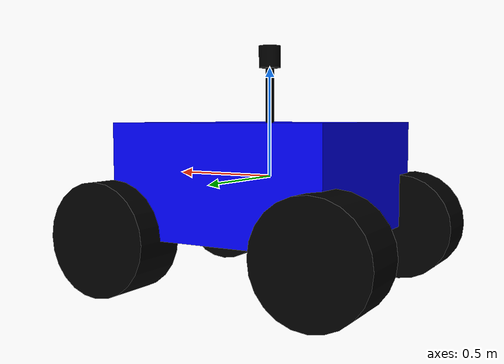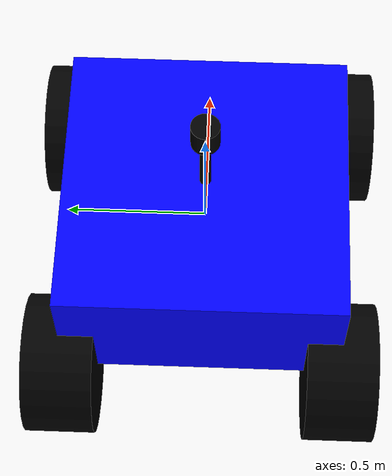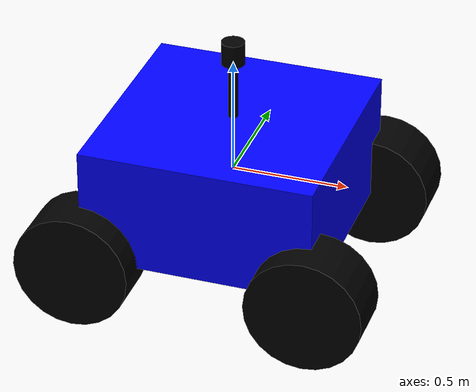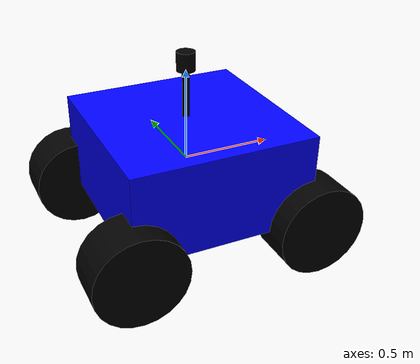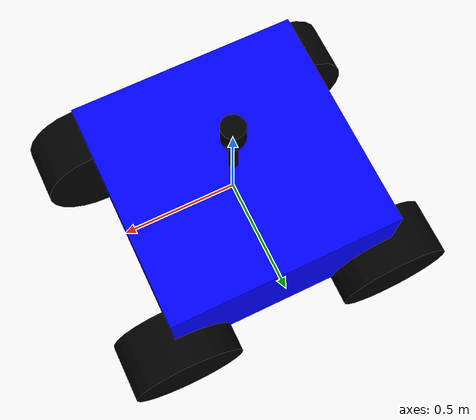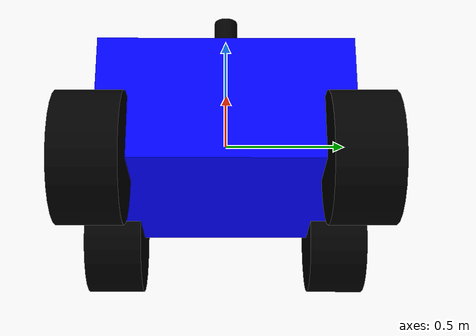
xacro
<?xml version="1.0"?>
<robot xmlns:xacro="http://www.ros.org/wiki/xacro" name="four_wheel_bot">

  <!-- Materials -->
  <material name="black">
    <color rgba="0 0 0 1"/>
  </material>
  <material name="blue">
    <color rgba="0 0 1 1"/>
  </material>

  <!-- Properties -->
  <xacro:property name="wheel_radius" value="0.25"/>
  <xacro:property name="wheel_length" value="0.25"/>
  <xacro:property name="wheel_color" value="black"/>

  <!-- Base link -->
  <link name="base_link">
    <visual>
      <geometry>
        <box size="1 1 0.5"/>
      </geometry>
      <material name="blue"/>
    </visual>
    <collision>
      <origin rpy="1.5708 0 0"/>
      <geometry>
        <box size="1 1 0.5"/>
      </geometry>
    </collision>
    <inertial>
      <mass value="1"/>
      <inertia ixx="0.1" ixy="0.0" ixz="0.0" iyy="0.1" iyz="0.0" izz="0.1"/>
    </inertial>
  </link>

  <gazebo reference="base_link">
    <material>Gazebo/Blue</material>
  </gazebo>
  <!-- LIDAR Stand Link -->
<link name="lidar_stand_link">
  <visual>
    <origin xyz="0 0 0.15" rpy="0 0 0"/>
    <geometry>
      <cylinder radius="0.02" length="0.3"/>
    </geometry>
    <material name="black"/>
  </visual>
  <collision>
    <origin xyz="0 0 0.15" rpy="0 0 0"/>
    <geometry>
      <cylinder radius="0.02" length="0.3"/>
    </geometry>
  </collision>
  <inertial>
    <mass value="0.05"/>
    <inertia ixx="0.0001" ixy="0.0" ixz="0.0"
             iyy="0.0001" iyz="0.0"
             izz="0.0001"/>
  </inertial>
</link>

<!-- Fixed joint from base_link to lidar_stand_link -->
<joint name="lidar_stand_joint" type="fixed">
  <parent link="base_link"/>
  <child link="lidar_stand_link"/>
  <origin xyz="0 0 0.25" rpy="0 0 0"/>
</joint>

  <!-- Wheel macro -->
  <xacro:macro name="wheel_with_joint" params="wheel_name joint_name x y z">
    <link name="${wheel_name}">
      <visual>
        <origin rpy="1.5708 0 0"/>
        <geometry>
          <cylinder length="${wheel_length}" radius="${wheel_radius}"/>
        </geometry>
        <material name="${wheel_color}"/>
      </visual>
      <collision>
        <origin rpy="1.5708 0 0"/>
        <geometry>
          <cylinder length="${wheel_length}" radius="${wheel_radius}"/>
        </geometry>
      </collision>
      <inertial>
        <mass value="0.2"/>
        <inertia ixx="0.01" ixy="0.0" ixz="0.0" iyy="0.01" iyz="0.0" izz="0.01"/>
      </inertial>
    </link>

    <gazebo reference="${wheel_name}">
      <material>Gazebo/Black</material>
    </gazebo>

    <joint name="${joint_name}" type="continuous">
      <parent link="base_link"/>
      <child link="${wheel_name}"/>
      <origin xyz="${x} ${y} ${z}" rpy="0 0 0"/>
      <axis xyz="0 1 0"/>
      <limit effort="1.0" velocity="1.0"/>
    </joint>
  </xacro:macro>

  <!-- Front wheels -->
  <xacro:wheel_with_joint wheel_name="front_left_wheel"  joint_name="front_left_joint"  x="0.5"  y="0.5"  z="-0.25"/>
  <xacro:wheel_with_joint wheel_name="front_right_wheel" joint_name="front_right_joint" x="0.5"  y="-0.5" z="-0.25"/>

  <!-- Rear wheels -->
  <link name="rear_left_wheel">
    <visual>
      <origin rpy="1.5708 0 0"/>
      <geometry>
        <cylinder length="${wheel_length}" radius="${wheel_radius}"/>
      </geometry>
      <material name="${wheel_color}"/>
    </visual>
    <collision>
      <origin rpy="1.5708 0 0"/>
      <geometry>
        <cylinder length="${wheel_length}" radius="${wheel_radius}"/>
      </geometry>
    </collision>
    <inertial>
      <mass value="0.2"/>
      <inertia ixx="0.01" ixy="0.0" ixz="0.0" iyy="0.01" iyz="0.0" izz="0.01"/>
    </inertial>
  </link>
  <joint name="rear_left_joint" type="continuous">
    <parent link="base_link"/>
    <child link="rear_left_wheel"/>
    <origin xyz="-0.5 0.5 -0.25" rpy="0 0 0"/>
    <axis xyz="0 1 0"/>
    <mimic joint="front_left_joint"/>
  </joint>

  <link name="rear_right_wheel">
    <visual>
      <origin rpy="1.5708 0 0"/>
      <geometry>
        <cylinder length="${wheel_length}" radius="${wheel_radius}"/>
      </geometry>
      <material name="${wheel_color}"/>
    </visual>
    <collision>
      <origin rpy="1.5708 0 0"/>
      <geometry>
        <cylinder length="${wheel_length}" radius="${wheel_radius}"/>
      </geometry>
    </collision>
    <inertial>
      <mass value="0.2"/>
      <inertia ixx="0.01" ixy="0.0" ixz="0.0" iyy="0.01" iyz="0.0" izz="0.01"/>
    </inertial>
  </link>
  <joint name="rear_right_joint" type="continuous">
    <parent link="base_link"/>
    <child link="rear_right_wheel"/>
    <origin xyz="-0.5 -0.5 -0.25" rpy="0 0 0"/>
    <axis xyz="0 1 0"/>
    <mimic joint="front_right_joint"/>
  </joint>

  <!-- Diff drive plugin -->
  <gazebo>
    <plugin name="diff_drive_controller" filename="libgazebo_ros_diff_drive.so">
      <ros>
        <namespace>/</namespace>
        <remapping>cmd_vel:=cmd_vel</remapping>
      </ros>
      <update_rate>50.0</update_rate>
      <left_joint>front_left_joint</left_joint>
      <right_joint>front_right_joint</right_joint>
      <wheel_separation>1.0</wheel_separation>
      <wheel_radius>0.25</wheel_radius>
      <wheel_diameter>0.5</wheel_diameter>
      <wheel_acceleration>1.0</wheel_acceleration>
      <wheel_torque>10.0</wheel_torque>
      <publish_wheel_tf>true</publish_wheel_tf>
      <publish_wheel_joint_state>true</publish_wheel_joint_state>
      <legacy_mode>false</legacy_mode>
    </plugin>
  </gazebo>

  <!-- LIDAR -->
  <link name="lidar_link">
    <visual>
      <origin xyz="0 0 0.15" rpy="0 0 0"/>
      <geometry>
        <cylinder radius="0.05" length="0.1"/>
      </geometry>
      <material name="black"/>
    </visual>
    <collision>
      <origin xyz="0 0 0.15" rpy="0 0 0"/>
      <geometry>
        <cylinder radius="0.05" length="0.1"/>
      </geometry>
    </collision>
    <inertial>
      <mass value="0.1"/>
      <inertia ixx="0.0001" ixy="0.0" ixz="0.0" iyy="0.0001" iyz="0.0" izz="0.0001"/>
    </inertial>
  </link>
  <joint name="lidar_joint" type="fixed">
    <parent link="lidar_stand_link"/>
    <child link="lidar_link"/>
    <origin xyz="0 0 0.15" rpy="0 0 0"/>
  </joint>

  <gazebo reference="lidar_link">
    <sensor name="lidar_sensor" type="ray">
      <always_on>true</always_on>
      <update_rate>10.0</update_rate>
      <visualize>true</visualize>
      <ray>
        <scan>
          <horizontal>
            <samples>720</samples>
            <resolution>1</resolution>
            <min_angle>-1.5708</min_angle>
            <max_angle>1.5708</max_angle>
          </horizontal>
        </scan>
        <range>
          <min>0.12</min>
          <max>3.5</max>
          <resolution>0.01</resolution>
        </range>
        <noise>
          <type>gaussian</type>
          <mean>0.0</mean>
          <stddev>0.01</stddev>
        </noise>
      </ray>
      <plugin name="gazebo_ros_ray_sensor" filename="libgazebo_ros_ray_sensor.so">
        <ros>
          <remapping>~/out:=scan</remapping>
        </ros>
        <frame_name>lidar_link</frame_name>
      </plugin>
    </sensor>
  </gazebo>

</robot>
